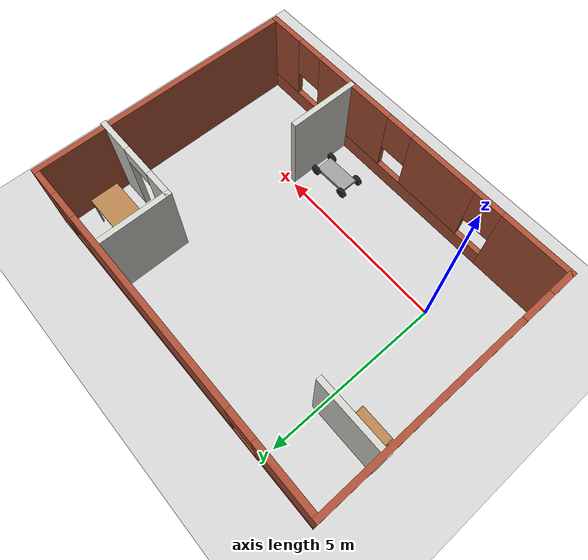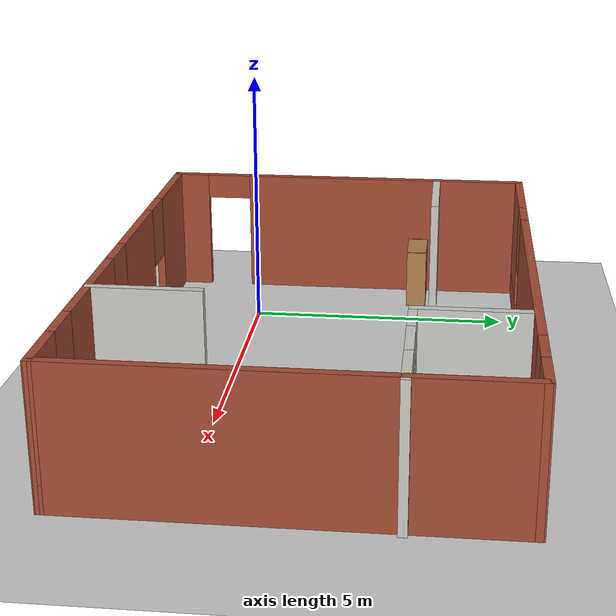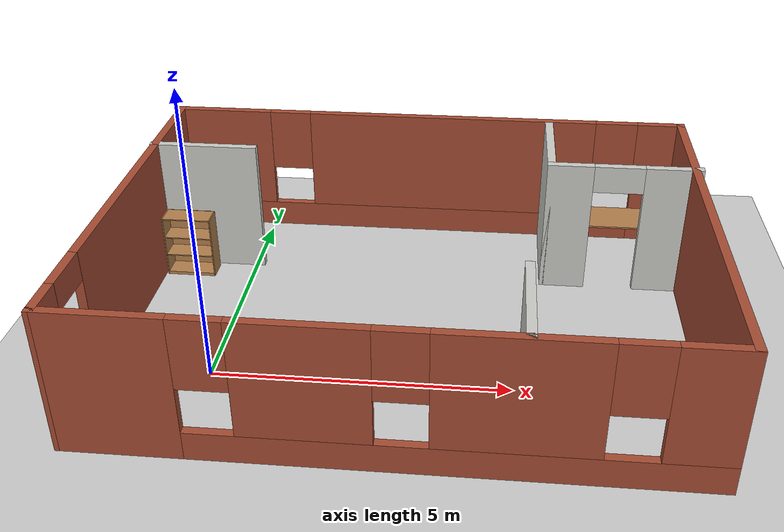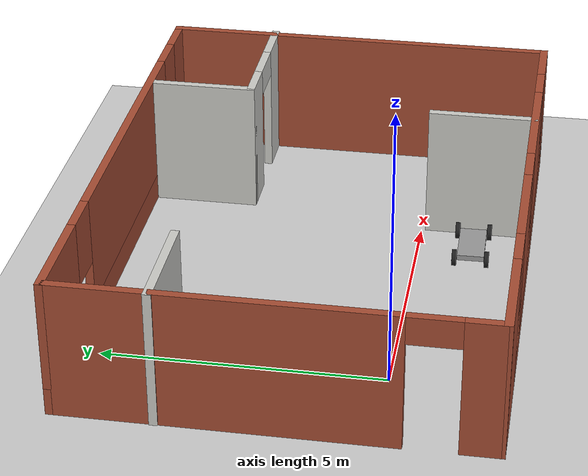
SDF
<sdf version="1.7">
 <world name="default">
  <light name="sun" type="directional">
   <pose>0 0 10 0 -0 0</pose>
   <diffuse>0.8 0.8 0.8 1</diffuse>
   <specular>0.2 0.2 0.2 1</specular>
   <attenuation>
    <range>1000</range>
    <constant>0.9</constant>
    <linear>0.01</linear>
    <quadratic>0.001</quadratic>
   </attenuation>
   <direction>-0.5 0.1 -0.9</direction>
   <spot><inner_angle>0</inner_angle><outer_angle>0</outer_angle><falloff>0</falloff></spot>
  </light>
  <model name="ground_plane">
   <static>1</static>
   <link name="link">
    <collision name="collision">
     <geometry><plane><normal>0 0 1</normal><size>100 100</size></plane></geometry>
     <surface><friction><ode><mu>100</mu><mu2>50</mu2></ode></friction></surface>
    </collision>
    <visual name="visual">
     <cast_shadows>0</cast_shadows>
     <geometry><plane><normal>0 0 1</normal><size>100 100</size></plane></geometry>
     <material>
      <script><uri>file://media/materials/scripts/gazebo.material</uri><name>Gazebo/Grey</name></script>
     </material>
    </visual>
   </link>
  </model>
  <gravity>0 0 -9.8</gravity>
  <magnetic_field>6e-06 2.3e-05 -4.2e-05</magnetic_field>
  <atmosphere type="adiabatic"/>
  <physics type="ode">
   <max_step_size>0.001</max_step_size>
   <real_time_factor>1</real_time_factor>
   <real_time_update_rate>1000</real_time_update_rate>
  </physics>
  <scene><ambient>0.4 0.4 0.4 1</ambient><background>0.7 0.7 0.7 1</background><shadows>1</shadows></scene>
  <audio><device>default</device></audio>
  <spherical_coordinates>
   <surface_model>EARTH_WGS84</surface_model>
   <latitude_deg>0</latitude_deg>
   <longitude_deg>0</longitude_deg>
   <elevation>0</elevation>
   <heading_deg>0</heading_deg>
  </spherical_coordinates>
  <model name="map1">
   <pose>3.19025 1.66684 0 0 -0 0</pose>
   <link name="Wall_10">
    <pose>-4.95199 0.007093 0 0 -0 -1.5708</pose>
    <visual name="Wall_10_Visual_0">
     <pose>-0.82256 0 1.25 0 -0 0</pose>
     <geometry><box><size>5.85488 0.15 2.5</size></box></geometry>
     <material>
      <script><uri>file://media/materials/scripts/gazebo.material</uri><name>Gazebo/Bricks</name></script>
      <ambient>1 1 1 1</ambient>
     </material>
     <meta><layer>0</layer></meta>
    </visual>
    <collision name="Wall_10_Collision_0">
     <geometry><box><size>5.85488 0.15 2.5</size></box></geometry>
     <pose>-0.82256 0 1.25 0 -0 0</pose>
    </collision>
    <visual name="Wall_10_Visual_1">
     <pose>3.37744 0 1.25 0 -0 0</pose>
     <geometry><box><size>0.745119 0.15 2.5</size></box></geometry>
     <material>
      <script><uri>file://media/materials/scripts/gazebo.material</uri><name>Gazebo/Bricks</name></script>
      <ambient>1 1 1 1</ambient>
     </material>
     <meta><layer>0</layer></meta>
    </visual>
    <collision name="Wall_10_Collision_1">
     <geometry><box><size>0.745119 0.15 2.5</size></box></geometry>
     <pose>3.37744 0 1.25 0 -0 0</pose>
    </collision>
    <visual name="Wall_10_Visual_2">
     <pose>2.55488 0 2.25 0 -0 0</pose>
     <geometry><box><size>0.9 0.15 0.5</size></box></geometry>
     <material>
      <script><uri>file://media/materials/scripts/gazebo.material</uri><name>Gazebo/Bricks</name></script>
      <ambient>1 1 1 1</ambient>
     </material>
     <meta><layer>0</layer></meta>
    </visual>
    <collision name="Wall_10_Collision_2">
     <geometry><box><size>0.9 0.15 0.5</size></box></geometry>
     <pose>2.55488 0 2.25 0 -0 0</pose>
    </collision>
   </link>
   <link name="Wall_12">
    <collision name="Wall_12_Collision">
     <geometry><box><size>2 0.15 2.5</size></box></geometry>
     <pose>0 0 1.25 0 -0 0</pose>
    </collision>
    <visual name="Wall_12_Visual">
     <pose>0 0 1.25 0 -0 0</pose>
     <geometry><box><size>2 0.15 2.5</size></box></geometry>
     <material>
      <script><uri>file://media/materials/scripts/gazebo.material</uri><name>Gazebo/CeilingTiled</name></script>
      <ambient>1 1 1 1</ambient>
     </material>
     <meta><layer>0</layer></meta>
    </visual>
    <pose>2.37071 2.64174 0 0 -0 -1.5708</pose>
   </link>
   <link name="Wall_13">
    <pose>3.67071 1.71674 0 0 -0 0</pose>
    <visual name="Wall_13_Visual_0">
     <pose>-0.959093 0 1.25 0 -0 0</pose>
     <geometry><box><size>0.831814 0.15 2.5</size></box></geometry>
     <material>
      <script><uri>file://media/materials/scripts/gazebo.material</uri><name>Gazebo/CeilingTiled</name></script>
      <ambient>1 1 1 1</ambient>
     </material>
     <meta><layer>0</layer></meta>
    </visual>
    <collision name="Wall_13_Collision_0">
     <geometry><box><size>0.831814 0.15 2.5</size></box></geometry>
     <pose>-0.959093 0 1.25 0 -0 0</pose>
    </collision>
    <visual name="Wall_13_Visual_1">
     <pose>0.865907 0 1.25 0 -0 0</pose>
     <geometry><box><size>1.01819 0.15 2.5</size></box></geometry>
     <material>
      <script><uri>file://media/materials/scripts/gazebo.material</uri><name>Gazebo/CeilingTiled</name></script>
      <ambient>1 1 1 1</ambient>
     </material>
     <meta><layer>0</layer></meta>
    </visual>
    <collision name="Wall_13_Collision_1">
     <geometry><box><size>1.01819 0.15 2.5</size></box></geometry>
     <pose>0.865907 0 1.25 0 -0 0</pose>
    </collision>
    <visual name="Wall_13_Visual_2">
     <pose>-0.093186 0 2.25 0 -0 0</pose>
     <geometry><box><size>0.9 0.15 0.5</size></box></geometry>
     <material>
      <script><uri>file://media/materials/scripts/gazebo.material</uri><name>Gazebo/CeilingTiled</name></script>
      <ambient>1 1 1 1</ambient>
     </material>
     <meta><layer>0</layer></meta>
    </visual>
    <collision name="Wall_13_Collision_2">
     <geometry><box><size>0.9 0.15 0.5</size></box></geometry>
     <pose>-0.093186 0 2.25 0 -0 0</pose>
    </collision>
   </link>
   <link name="Wall_20">
    <collision name="Wall_20_Collision">
     <geometry><box><size>2 0.15 2.5</size></box></geometry>
     <pose>0 0 1.25 0 -0 0</pose>
    </collision>
    <visual name="Wall_20_Visual">
     <pose>0 0 1.25 0 -0 0</pose>
     <geometry><box><size>2 0.15 2.5</size></box></geometry>
     <material>
      <script><uri>file://media/materials/scripts/gazebo.material</uri><name>Gazebo/CeilingTiled</name></script>
      <ambient>1 1 1 1</ambient>
     </material>
     <meta><layer>0</layer></meta>
    </visual>
    <pose>-4.04571 1.94469 0 0 -0 0</pose>
   </link>
   <link name="Wall_22">
    <collision name="Wall_22_Collision">
     <geometry><box><size>2 0.15 2.5</size></box></geometry>
     <pose>0 0 1.25 0 -0 0</pose>
    </collision>
    <visual name="Wall_22_Visual">
     <pose>0 0 1.25 0 -0 0</pose>
     <geometry><box><size>2 0.15 2.5</size></box></geometry>
     <material>
      <script><uri>file://media/materials/scripts/gazebo.material</uri><name>Gazebo/CeilingTiled</name></script>
      <ambient>1 1 1 1</ambient>
     </material>
     <meta><layer>0</layer></meta>
    </visual>
    <pose>1.94534 -2.72791 0 0 -0 1.5708</pose>
   </link>
   <link name="Wall_5">
    <pose>-0.026992 -3.67645 0 0 -0 -0.001736</pose>
    <visual name="Wall_5_Visual_0">
     <pose>-4.00522 0 1.25 0 -0 0</pose>
     <geometry><box><size>1.98956 0.15 2.5</size></box></geometry>
     <material>
      <script><uri>file://media/materials/scripts/gazebo.material</uri><name>Gazebo/Bricks</name></script>
      <ambient>1 1 1 1</ambient>
     </material>
     <meta><layer>0</layer></meta>
    </visual>
    <collision name="Wall_5_Collision_0">
     <geometry><box><size>1.98956 0.15 2.5</size></box></geometry>
     <pose>-4.00522 0 1.25 0 -0 0</pose>
    </collision>
    <visual name="Wall_5_Visual_1">
     <pose>0.99478 0 0.25 0 -0 0</pose>
     <geometry><box><size>8.01044 0.15 0.5</size></box></geometry>
     <material>
      <script><uri>file://media/materials/scripts/gazebo.material</uri><name>Gazebo/Bricks</name></script>
      <ambient>1 1 1 1</ambient>
     </material>
     <meta><layer>0</layer></meta>
    </visual>
    <collision name="Wall_5_Collision_1">
     <geometry><box><size>8.01044 0.15 0.5</size></box></geometry>
     <pose>0.99478 0 0.25 0 -0 0</pose>
    </collision>
    <visual name="Wall_5_Visual_2">
     <pose>-1.19237 0 1.5 0 -0 0</pose>
     <geometry><box><size>2.03615 0.15 2</size></box></geometry>
     <material>
      <script><uri>file://media/materials/scripts/gazebo.material</uri><name>Gazebo/Bricks</name></script>
      <ambient>1 1 1 1</ambient>
     </material>
     <meta><layer>0</layer></meta>
    </visual>
    <collision name="Wall_5_Collision_2">
     <geometry><box><size>2.03615 0.15 2</size></box></geometry>
     <pose>-1.19237 0 1.5 0 -0 0</pose>
    </collision>
    <visual name="Wall_5_Visual_3">
     <pose>1.86488 0 1.5 0 -0 0</pose>
     <geometry><box><size>2.47833 0.15 2</size></box></geometry>
     <material>
      <script><uri>file://media/materials/scripts/gazebo.material</uri><name>Gazebo/Bricks</name></script>
      <ambient>1 1 1 1</ambient>
     </material>
     <meta><layer>0</layer></meta>
    </visual>
    <collision name="Wall_5_Collision_3">
     <geometry><box><size>2.47833 0.15 2</size></box></geometry>
     <pose>1.86488 0 1.5 0 -0 0</pose>
    </collision>
    <visual name="Wall_5_Visual_4">
     <pose>4.45202 0 1.5 0 -0 0</pose>
     <geometry><box><size>1.09596 0.15 2</size></box></geometry>
     <material>
      <script><uri>file://media/materials/scripts/gazebo.material</uri><name>Gazebo/Bricks</name></script>
      <ambient>1 1 1 1</ambient>
     </material>
     <meta><layer>0</layer></meta>
    </visual>
    <collision name="Wall_5_Collision_4">
     <geometry><box><size>1.09596 0.15 2</size></box></geometry>
     <pose>4.45202 0 1.5 0 -0 0</pose>
    </collision>
    <visual name="Wall_5_Visual_5">
     <pose>-2.61044 0 1.9 0 -0 0</pose>
     <geometry><box><size>0.8 0.15 1.2</size></box></geometry>
     <material>
      <script><uri>file://media/materials/scripts/gazebo.material</uri><name>Gazebo/Bricks</name></script>
      <ambient>1 1 1 1</ambient>
     </material>
     <meta><layer>0</layer></meta>
    </visual>
    <collision name="Wall_5_Collision_5">
     <geometry><box><size>0.8 0.15 1.2</size></box></geometry>
     <pose>-2.61044 0 1.9 0 -0 0</pose>
    </collision>
    <visual name="Wall_5_Visual_6">
     <pose>0.225708 0 1.9 0 -0 0</pose>
     <geometry><box><size>0.8 0.15 1.2</size></box></geometry>
     <material>
      <script><uri>file://media/materials/scripts/gazebo.material</uri><name>Gazebo/Bricks</name></script>
      <ambient>1 1 1 1</ambient>
     </material>
     <meta><layer>0</layer></meta>
    </visual>
    <collision name="Wall_5_Collision_6">
     <geometry><box><size>0.8 0.15 1.2</size></box></geometry>
     <pose>0.225708 0 1.9 0 -0 0</pose>
    </collision>
    <visual name="Wall_5_Visual_7">
     <pose>3.50404 0 1.9 0 -0 0</pose>
     <geometry><box><size>0.8 0.15 1.2</size></box></geometry>
     <material>
      <script><uri>file://media/materials/scripts/gazebo.material</uri><name>Gazebo/Bricks</name></script>
      <ambient>1 1 1 1</ambient>
     </material>
     <meta><layer>0</layer></meta>
    </visual>
    <collision name="Wall_5_Collision_7">
     <geometry><box><size>0.8 0.15 1.2</size></box></geometry>
     <pose>3.50404 0 1.9 0 -0 0</pose>
    </collision>
   </link>
   <link name="Wall_6">
    <collision name="Wall_6_Collision">
     <geometry><box><size>7.5 0.15 2.5</size></box></geometry>
     <pose>0 0 1.25 0 -0 0</pose>
    </collision>
    <visual name="Wall_6_Visual">
     <pose>0 0 1.25 0 -0 0</pose>
     <geometry><box><size>7.5 0.15 2.5</size></box></geometry>
     <material>
      <script><uri>file://media/materials/scripts/gazebo.material</uri><name>Gazebo/Bricks</name></script>
      <ambient>1 1 1 1</ambient>
     </material>
     <meta><layer>0</layer></meta>
    </visual>
    <pose>4.89801 0.01011 0 0 -0 1.5708</pose>
   </link>
   <link name="Wall_9">
    <pose>-0.026992 3.6836 0 0 -0 -3.14129</pose>
    <visual name="Wall_9_Visual_0">
     <pose>-4.55255 0 1.25 0 -0 0</pose>
     <geometry><box><size>0.894905 0.15 2.5</size></box></geometry>
     <material>
      <script><uri>file://media/materials/scripts/gazebo.material</uri><name>Gazebo/Bricks</name></script>
      <ambient>1 1 1 1</ambient>
     </material>
     <meta><layer>0</layer></meta>
    </visual>
    <collision name="Wall_9_Collision_0">
     <geometry><box><size>0.894905 0.15 2.5</size></box></geometry>
     <pose>-4.55255 0 1.25 0 -0 0</pose>
    </collision>
    <visual name="Wall_9_Visual_1">
     <pose>0.447453 0 0.25 0 -0 0</pose>
     <geometry><box><size>9.1051 0.15 0.5</size></box></geometry>
     <material>
      <script><uri>file://media/materials/scripts/gazebo.material</uri><name>Gazebo/Bricks</name></script>
      <ambient>1 1 1 1</ambient>
     </material>
     <meta><layer>0</layer></meta>
    </visual>
    <collision name="Wall_9_Collision_1">
     <geometry><box><size>9.1051 0.15 0.5</size></box></geometry>
     <pose>0.447453 0 0.25 0 -0 0</pose>
    </collision>
    <visual name="Wall_9_Visual_2">
     <pose>-0.496971 0 1.5 0 -0 0</pose>
     <geometry><box><size>5.61625 0.15 2</size></box></geometry>
     <material>
      <script><uri>file://media/materials/scripts/gazebo.material</uri><name>Gazebo/Bricks</name></script>
      <ambient>1 1 1 1</ambient>
     </material>
     <meta><layer>0</layer></meta>
    </visual>
    <collision name="Wall_9_Collision_2">
     <geometry><box><size>5.61625 0.15 2</size></box></geometry>
     <pose>-0.496971 0 1.5 0 -0 0</pose>
    </collision>
    <visual name="Wall_9_Visual_3">
     <pose>4.05558 0 1.5 0 -0 0</pose>
     <geometry><box><size>1.88885 0.15 2</size></box></geometry>
     <material>
      <script><uri>file://media/materials/scripts/gazebo.material</uri><name>Gazebo/Bricks</name></script>
      <ambient>1 1 1 1</ambient>
     </material>
     <meta><layer>0</layer></meta>
    </visual>
    <collision name="Wall_9_Collision_3">
     <geometry><box><size>1.88885 0.15 2</size></box></geometry>
     <pose>4.05558 0 1.5 0 -0 0</pose>
    </collision>
    <visual name="Wall_9_Visual_4">
     <pose>-3.7051 0 1.9 0 -0 0</pose>
     <geometry><box><size>0.8 0.15 1.2</size></box></geometry>
     <material>
      <script><uri>file://media/materials/scripts/gazebo.material</uri><name>Gazebo/Bricks</name></script>
      <ambient>1 1 1 1</ambient>
     </material>
     <meta><layer>0</layer></meta>
    </visual>
    <collision name="Wall_9_Collision_4">
     <geometry><box><size>0.8 0.15 1.2</size></box></geometry>
     <pose>-3.7051 0 1.9 0 -0 0</pose>
    </collision>
    <visual name="Wall_9_Visual_5">
     <pose>2.71115 0 1.9 0 -0 0</pose>
     <geometry><box><size>0.8 0.15 1.2</size></box></geometry>
     <material>
      <script><uri>file://media/materials/scripts/gazebo.material</uri><name>Gazebo/Bricks</name></script>
      <ambient>1 1 1 1</ambient>
     </material>
     <meta><layer>0</layer></meta>
    </visual>
    <collision name="Wall_9_Collision_5">
     <geometry><box><size>0.8 0.15 1.2</size></box></geometry>
     <pose>2.71115 0 1.9 0 -0 0</pose>
    </collision>
   </link>
   <static>1</static>
  </model>
  <model name="bookshelf">
   <static>1</static>
   <link name="link">
    <inertial><mass>1</mass></inertial>
    <collision name="back">
     <pose>0 0.005 0.6 0 -0 0</pose>
     <geometry><box><size>0.9 0.01 1.2</size></box></geometry>
    </collision>
    <visual name="visual1">
     <pose>0 0.005 0.6 0 -0 0</pose>
     <geometry><box><size>0.9 0.01 1.2</size></box></geometry>
     <material>
      <script><uri>file://media/materials/scripts/gazebo.material</uri><name>Gazebo/Wood</name></script>
     </material>
    </visual>
    <collision name="left_side">
     <pose>0.45 -0.195 0.6 0 -0 0</pose>
     <geometry><box><size>0.02 0.4 1.2</size></box></geometry>
    </collision>
    <visual name="visual2">
     <pose>0.45 -0.195 0.6 0 -0 0</pose>
     <geometry><box><size>0.02 0.4 1.2</size></box></geometry>
     <material>
      <script><uri>file://media/materials/scripts/gazebo.material</uri><name>Gazebo/Wood</name></script>
     </material>
    </visual>
    <collision name="right_side">
     <pose>-0.45 -0.195 0.6 0 -0 0</pose>
     <geometry><box><size>0.02 0.4 1.2</size></box></geometry>
    </collision>
    <visual name="visual3">
     <pose>-0.45 -0.195 0.6 0 -0 0</pose>
     <geometry><box><size>0.02 0.4 1.2</size></box></geometry>
     <material>
      <script><uri>file://media/materials/scripts/gazebo.material</uri><name>Gazebo/Wood</name></script>
     </material>
    </visual>
    <collision name="bottom">
     <pose>0 -0.195 0.03 0 -0 0</pose>
     <geometry><box><size>0.88 0.4 0.06</size></box></geometry>
    </collision>
    <visual name="visual4">
     <pose>0 -0.195 0.03 0 -0 0</pose>
     <geometry><box><size>0.88 0.4 0.06</size></box></geometry>
     <material>
      <script><uri>file://media/materials/scripts/gazebo.material</uri><name>Gazebo/Wood</name></script>
     </material>
    </visual>
    <collision name="top">
     <pose>0 -0.195 1.19 0 -0 0</pose>
     <geometry><box><size>0.88 0.4 0.02</size></box></geometry>
    </collision>
    <visual name="visual5">
     <pose>0 -0.195 1.19 0 -0 0</pose>
     <geometry><box><size>0.88 0.4 0.02</size></box></geometry>
     <material>
      <script><uri>file://media/materials/scripts/gazebo.material</uri><name>Gazebo/Wood</name></script>
     </material>
    </visual>
    <collision name="low_shelf">
     <pose>0 -0.195 0.43 0 -0 0</pose>
     <geometry><box><size>0.88 0.4 0.02</size></box></geometry>
    </collision>
    <visual name="visual6">
     <pose>0 -0.195 0.43 0 -0 0</pose>
     <geometry><box><size>0.88 0.4 0.02</size></box></geometry>
     <material>
      <script><uri>file://media/materials/scripts/gazebo.material</uri><name>Gazebo/Wood</name></script>
     </material>
    </visual>
    <collision name="high_shelf">
     <pose>0 -0.195 0.8 0 -0 0</pose>
     <geometry><box><size>0.88 0.4 0.02</size></box></geometry>
    </collision>
    <visual name="visual7">
     <pose>0 -0.195 0.8 0 -0 0</pose>
     <geometry><box><size>0.88 0.4 0.02</size></box></geometry>
     <material>
      <script><uri>file://media/materials/scripts/gazebo.material</uri><name>Gazebo/Wood</name></script>
     </material>
    </visual>
   </link>
   <pose>-1.18793 3.4415 0 0 -0 0</pose>
  </model>
  <model name="cart_front_steer">
   <link name="chassis">
    <pose>0 0 0.15 0 -0 0</pose>
    <inertial>
     <pose>0.1 0 0 0 -0 0</pose>
     <mass>10</mass>
     <inertia>
      <ixx>0.216667</ixx>
      <iyy>0.841667</iyy>
      <izz>1.04167</izz>
      <ixy>0</ixy>
      <ixz>0</ixz>
      <iyz>0</iyz>
     </inertia>
    </inertial>
    <collision name="collision"><geometry><box><size>1 0.5 0.1</size></box></geometry></collision>
    <visual name="visual">
     <geometry><box><size>1 0.5 0.1</size></box></geometry>
     <material>
      <script><uri>file://media/materials/scripts/gazebo.material</uri><name>Gazebo/Grey</name></script>
     </material>
    </visual>
   </link>
   <link name="wheel_front_left">
    <pose>0.5 0.298 0.15 -1.5708 -0.087266 0</pose>
    <inertial>
     <mass>0.5</mass>
     <inertia>
      <ixx>0.00307917</ixx>
      <iyy>0.00307917</iyy>
      <izz>0.005625</izz>
      <ixy>0</ixy>
      <ixz>0</ixz>
      <iyz>0</iyz>
     </inertia>
    </inertial>
    <collision name="collision">
     <geometry><cylinder><radius>0.15</radius><length>0.08</length></cylinder></geometry>
    </collision>
    <visual name="visual">
     <geometry><cylinder><radius>0.15</radius><length>0.08</length></cylinder></geometry>
     <material>
      <script><uri>file://media/materials/scripts/gazebo.material</uri><name>Gazebo/Black</name></script>
     </material>
    </visual>
   </link>
   <joint name="wheel_front_left_steer_spin" type="universal">
    <parent>chassis</parent>
    <child>wheel_front_left</child>
    <axis>
     <xyz>0 -1 0</xyz>
     <limit><lower>-0.610865</lower><upper>0.610865</upper></limit>
     <dynamics><spring_reference>0</spring_reference><spring_stiffness>0</spring_stiffness></dynamics>
    </axis>
    <axis2>
     <xyz>0 0 1</xyz>
     <limit><upper>1e+16</upper><lower>-1e+16</lower></limit>
     <dynamics><spring_reference>0</spring_reference><spring_stiffness>0</spring_stiffness></dynamics>
    </axis2>
   </joint>
   <link name="wheel_front_right">
    <pose>0.5 -0.298 0.15 -1.5708 -0.087266 0</pose>
    <inertial>
     <mass>0.5</mass>
     <inertia>
      <ixx>0.00307917</ixx>
      <iyy>0.00307917</iyy>
      <izz>0.005625</izz>
      <ixy>0</ixy>
      <ixz>0</ixz>
      <iyz>0</iyz>
     </inertia>
    </inertial>
    <collision name="collision">
     <geometry><cylinder><radius>0.15</radius><length>0.08</length></cylinder></geometry>
    </collision>
    <visual name="visual">
     <geometry><cylinder><radius>0.15</radius><length>0.08</length></cylinder></geometry>
     <material>
      <script><uri>file://media/materials/scripts/gazebo.material</uri><name>Gazebo/Black</name></script>
     </material>
    </visual>
   </link>
   <joint name="wheel_front_right_steer_spin" type="universal">
    <parent>chassis</parent>
    <child>wheel_front_right</child>
    <axis>
     <xyz>0 -1 0</xyz>
     <limit><lower>-0.610865</lower><upper>0.610865</upper></limit>
     <dynamics><spring_reference>0</spring_reference><spring_stiffness>0</spring_stiffness></dynamics>
    </axis>
    <axis2>
     <xyz>0 0 1</xyz>
     <limit><upper>1e+16</upper><lower>-1e+16</lower></limit>
     <dynamics><spring_reference>0</spring_reference><spring_stiffness>0</spring_stiffness></dynamics>
    </axis2>
   </joint>
   <link name="wheel_rear_left">
    <pose>-0.5 0.298 0.15 -1.5708 0 0</pose>
    <inertial>
     <mass>0.5</mass>
     <inertia>
      <ixx>0.00307917</ixx>
      <iyy>0.00307917</iyy>
      <izz>0.005625</izz>
      <ixy>0</ixy>
      <ixz>0</ixz>
      <iyz>0</iyz>
     </inertia>
    </inertial>
    <collision name="collision">
     <geometry><cylinder><radius>0.15</radius><length>0.08</length></cylinder></geometry>
    </collision>
    <visual name="visual">
     <geometry><cylinder><radius>0.15</radius><length>0.08</length></cylinder></geometry>
     <material>
      <script><uri>file://media/materials/scripts/gazebo.material</uri><name>Gazebo/Black</name></script>
     </material>
    </visual>
   </link>
   <joint name="wheel_rear_left_spin" type="revolute">
    <parent>chassis</parent>
    <child>wheel_rear_left</child>
    <axis>
     <xyz>0 0 1</xyz>
     <limit><lower>-1e+16</lower><upper>1e+16</upper></limit>
     <dynamics><spring_reference>0</spring_reference><spring_stiffness>0</spring_stiffness></dynamics>
    </axis>
   </joint>
   <link name="wheel_rear_right">
    <pose>-0.5 -0.298 0.15 -1.5708 0 0</pose>
    <inertial>
     <mass>0.5</mass>
     <inertia>
      <ixx>0.00307917</ixx>
      <iyy>0.00307917</iyy>
      <izz>0.005625</izz>
      <ixy>0</ixy>
      <ixz>0</ixz>
      <iyz>0</iyz>
     </inertia>
    </inertial>
    <collision name="collision">
     <geometry><cylinder><radius>0.15</radius><length>0.08</length></cylinder></geometry>
    </collision>
    <visual name="visual">
     <geometry><cylinder><radius>0.15</radius><length>0.08</length></cylinder></geometry>
     <material>
      <script><uri>file://media/materials/scripts/gazebo.material</uri><name>Gazebo/Black</name></script>
     </material>
    </visual>
   </link>
   <joint name="wheel_rear_right_spin" type="revolute">
    <parent>chassis</parent>
    <child>wheel_rear_right</child>
    <axis>
     <xyz>0 0 1</xyz>
     <limit><lower>-1e+16</lower><upper>1e+16</upper></limit>
     <dynamics><spring_reference>0</spring_reference><spring_stiffness>0</spring_stiffness></dynamics>
    </axis>
   </joint>
   <pose>4.40228 -1.01111 -8e-06 2.5e-05 -1e-06 0.019799</pose>
  </model>
  <model name="table">
   <static>1</static>
   <link name="link">
    <collision name="surface">
     <pose>0 0 1 0 -0 0</pose>
     <geometry><box><size>1.5 0.8 0.03</size></box></geometry>
     <surface><friction><ode><mu>0.6</mu><mu2>0.6</mu2></ode></friction></surface>
    </collision>
    <visual name="visual1">
     <pose>0 0 1 0 -0 0</pose>
     <geometry><box><size>1.5 0.8 0.03</size></box></geometry>
     <material>
      <script><uri>file://media/materials/scripts/gazebo.material</uri><name>Gazebo/Wood</name></script>
     </material>
    </visual>
    <collision name="front_left_leg">
     <pose>0.68 0.38 0.5 0 -0 0</pose>
     <geometry><cylinder><radius>0.02</radius><length>1</length></cylinder></geometry>
    </collision>
    <visual name="front_left_leg">
     <pose>0.68 0.38 0.5 0 -0 0</pose>
     <geometry><cylinder><radius>0.02</radius><length>1</length></cylinder></geometry>
     <material>
      <script><uri>file://media/materials/scripts/gazebo.material</uri><name>Gazebo/Grey</name></script>
     </material>
    </visual>
    <collision name="front_right_leg">
     <pose>0.68 -0.38 0.5 0 -0 0</pose>
     <geometry><cylinder><radius>0.02</radius><length>1</length></cylinder></geometry>
    </collision>
    <visual name="front_right_leg">
     <pose>0.68 -0.38 0.5 0 -0 0</pose>
     <geometry><cylinder><radius>0.02</radius><length>1</length></cylinder></geometry>
     <material>
      <script><uri>file://media/materials/scripts/gazebo.material</uri><name>Gazebo/Grey</name></script>
     </material>
    </visual>
    <collision name="back_right_leg">
     <pose>-0.68 -0.38 0.5 0 -0 0</pose>
     <geometry><cylinder><radius>0.02</radius><length>1</length></cylinder></geometry>
    </collision>
    <visual name="back_right_leg">
     <pose>-0.68 -0.38 0.5 0 -0 0</pose>
     <geometry><cylinder><radius>0.02</radius><length>1</length></cylinder></geometry>
     <material>
      <script><uri>file://media/materials/scripts/gazebo.material</uri><name>Gazebo/Grey</name></script>
     </material>
    </visual>
    <collision name="back_left_leg">
     <pose>-0.68 0.38 0.5 0 -0 0</pose>
     <geometry><cylinder><radius>0.02</radius><length>1</length></cylinder></geometry>
    </collision>
    <visual name="back_left_leg">
     <pose>-0.68 0.38 0.5 0 -0 0</pose>
     <geometry><cylinder><radius>0.02</radius><length>1</length></cylinder></geometry>
     <material>
      <script><uri>file://media/materials/scripts/gazebo.material</uri><name>Gazebo/Grey</name></script>
     </material>
    </visual>
   </link>
   <pose>6.81363 4.26337 0 0 -0 0</pose>
  </model>
 </world>
</sdf>
